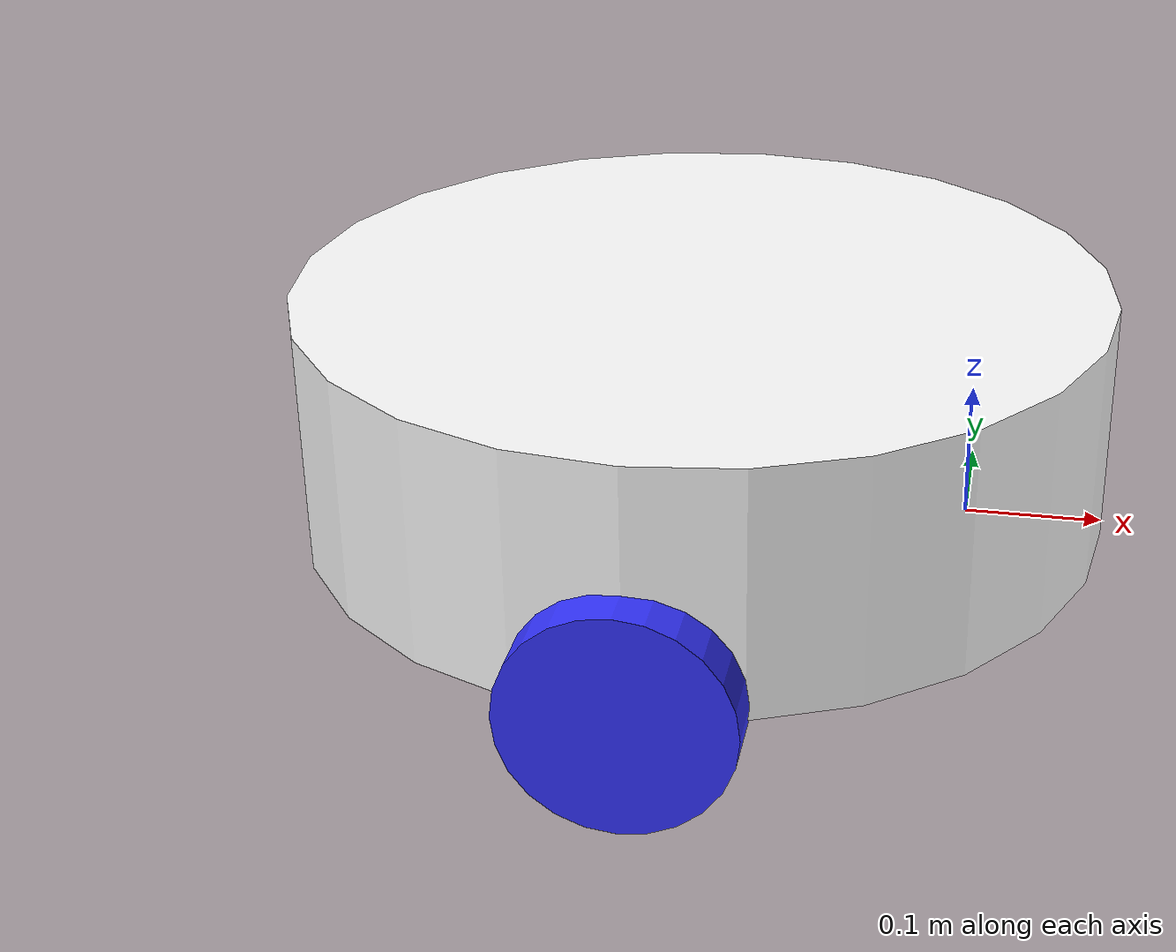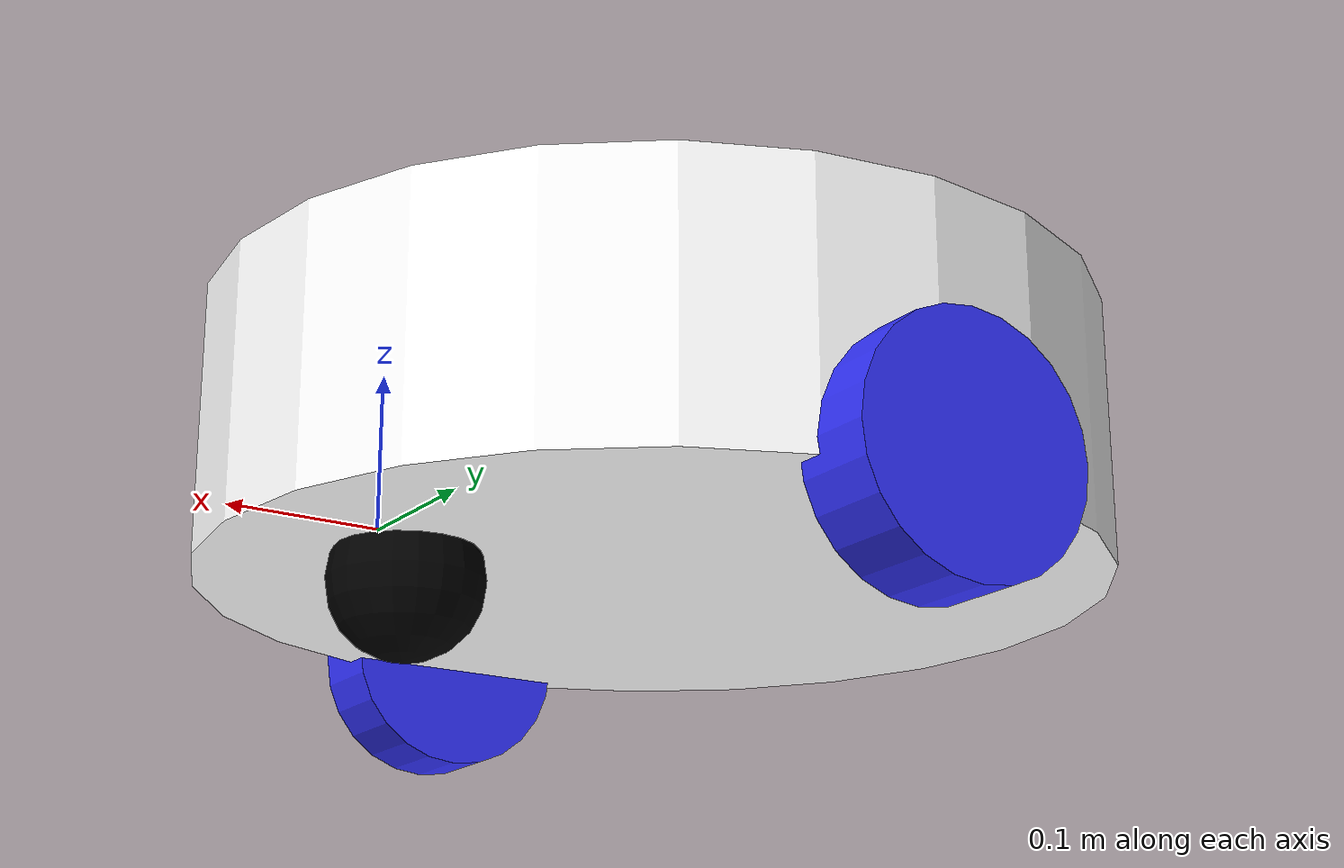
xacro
<?xml version="1.0"?>
<robot xmlns:xacro="http://www.ros.org/wiki/xacro" >

    <xacro:include filename="inertial_macros.xacro"/>

    <xacro:property name="chassis_length" value="0.18"/>
    <xacro:property name="chassis_radius" value="0.3"/>
    <xacro:property name="chassis_mass" value="1.0"/>
    <xacro:property name="wheel_radius" value="0.08"/>
    <xacro:property name="wheel_thickness" value="0.056"/>
    <xacro:property name="wheel_mass" value="0.05"/>
    <xacro:property name="wheel_offset_x" value="0.2"/>
    <xacro:property name="wheel_offset_y" value="0.17"/>
    <xacro:property name="wheel_offset_z" value="0.01"/>
    <xacro:property name="caster_wheel_radius" value="0.05"/>
    <xacro:property name="caster_wheel_mass" value="0.01"/>
    <xacro:property name="caster_wheel_offset_x" value="0.18"/>
    <xacro:property name="caster_wheel_offset_z" value="${wheel_offset_z - wheel_radius + caster_wheel_radius}"/>

    <material name="white">
        <color rgba="1 1 1 1" />
    </material>

    <material name="orange">
        <color rgba="1 0.3 0.1 1"/>
    </material>

    <material name="blue">
        <color rgba="0.2 0.2 1 1"/>
    </material>

    <material name="black">
        <color rgba="0 0 0 1"/>
    </material>

    <material name="red">
        <color rgba="1 0 0 1"/>
    </material>

    <!-- BASE LINK -->

    <link name="base_link">

    </link>

    <!-- BASE_FOOTPRINT LINK -->

    <joint name="base_footprint_joint" type="fixed">
        <parent link="base_link"/>
        <child link="base_footprint"/>
        <origin xyz="0 0 0" rpy="0 0 0"/>
    </joint>

    <link name="base_footprint">
    </link>

    <!-- CHASSIS LINK -->

    <joint name="chassis_joint" type="fixed">
        <parent link="base_link"/>
        <child link="chassis"/>
        <origin xyz="${-wheel_offset_x} 0 ${-wheel_offset_z}"/>
    </joint>

    <link name="chassis">
        <visual>
            <origin xyz="0 0 ${chassis_length/2}"/>
            <geometry>
                <cylinder length ="${chassis_length}" radius="${chassis_radius}" />
            </geometry>
            <material name="white"/>
        </visual>
        <collision>
            <origin xyz="0 0 ${chassis_length/2}"/>
            <geometry>
                <cylinder length ="${chassis_length}" radius="${chassis_radius}" />
            </geometry>
        </collision>
        <xacro:inertial_cylinder mass="0.5" length="${chassis_length}" radius="${chassis_radius}">
            <origin xyz="0 0 ${chassis_length/2}" rpy="0 0 0"/>
        </xacro:inertial_cylinder>
    </link>

    <gazebo reference="chassis">
        <material>Gazebo/Orange</material>
        <transparency>0</transparency>
    </gazebo>

    <!-- LEFT WHEEL LINK -->

    <joint name="left_wheel_joint" type="continuous">
        <parent link="base_link"/>
        <child link="left_wheel"/>
        <origin xyz="${-wheel_offset_x} ${chassis_radius} 0" rpy="${pi/2} 0 0" />
        <axis xyz="0 0 1"/>
    </joint>

    <link name="left_wheel">
        <visual>
            <geometry>
                <cylinder radius="${wheel_radius}" length="${wheel_thickness}"/>
            </geometry>
            <material name="blue"/>
        </visual>
        <collision>
            <geometry>
                <sphere radius="${wheel_radius}"/>
            </geometry>
        </collision>
        <xacro:inertial_cylinder mass="${wheel_mass}" length="${wheel_thickness}" radius="${wheel_radius}">
            <origin xyz="0 0 0" rpy="0 0 0"/>
        </xacro:inertial_cylinder>
    </link>

    <gazebo reference="left_wheel">
        <material>Gazebo/Blue</material>
    </gazebo>

    <!-- RIGHT WHEEL LINK -->

    <joint name="right_wheel_joint" type="continuous">
        <parent link="base_link"/>
        <child link="right_wheel"/>
        <origin xyz="${-wheel_offset_x} ${-chassis_radius} 0" rpy="${pi/2} 0 0" />
        <axis xyz="0 0 -1"/>
    </joint>

    <link name="right_wheel">
        <visual>
            <geometry>
                <cylinder radius="${wheel_radius}" length="${wheel_thickness}"/>
            </geometry>
            <material name="blue"/>
        </visual>
        <collision>
            <geometry>
                <sphere radius="${wheel_radius}"/>
            </geometry>
        </collision>
        <xacro:inertial_cylinder mass="${wheel_mass}" length="${wheel_thickness}" radius="${wheel_radius}">
            <origin xyz="0 0 0" rpy="0 0 0"/>
        </xacro:inertial_cylinder>
    </link>

    <gazebo reference="right_wheel">
        <material>Gazebo/Blue</material>
    </gazebo>

    <!-- CASTER WHEEL LINK -->

    <joint name="caster_wheel_joint" type="fixed">
        <parent link="chassis"/>
        <child link="caster_wheel"/>
        <origin xyz="${caster_wheel_offset_x} 0 ${caster_wheel_offset_z}"/>
    </joint>

    <link name="caster_wheel">
        <visual>
            <geometry>
                <sphere radius="${caster_wheel_radius}"/>
            </geometry>
            <material name="black"/>
        </visual>
        <collision>
            <geometry>
                <sphere radius="${caster_wheel_radius}"/>
            </geometry>
        </collision>
        <xacro:inertial_sphere mass="${caster_wheel_mass}" radius="${caster_wheel_radius}">
            <origin xyz="0 0 0" rpy="0 0 0"/>
        </xacro:inertial_sphere>
    </link>

    <gazebo reference="caster_wheel">
        <material>Gazebo/Black</material>
        <mu1 value="0.001"/>
        <mu2 value="0.001"/>
    </gazebo>

</robot>

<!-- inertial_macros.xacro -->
<robot xmlns:xacro="http://www.ros.org/wiki/xacro" >

    <!-- Specify some standard inertial calculations https://en.wikipedia.org/wiki/List_of_moments_of_inertia -->
    <!-- These make use of xacro's mathematical functionality -->

    <xacro:macro name="inertial_sphere" params="mass radius *origin">
        <inertial>
            <xacro:insert_block name="origin"/>
            <mass value="${mass}" />
            <inertia ixx="${(2.0/5.0) * mass * (radius*radius)}" ixy="0.0" ixz="0.0"
                    iyy="${(2.0/5.0) * mass * (radius*radius)}" iyz="0.0"
                    izz="${(2.0/5.0) * mass * (radius*radius)}" />
        </inertial>
    </xacro:macro>

 <xacro:macro name="inertial_box" params="mass x y z *origin">
        <inertial>
            <xacro:insert_block name="origin"/>
            <mass value="${mass}" />
            <inertia ixx="${(1.0/12.0) * mass * (y*y+z*z)}" ixy="0.0" ixz="0.0"
                    iyy="${(1.0/12.0) * mass * (x*x+z*z)}" iyz="0.0"
                    izz="${(1.0/12.0) * mass * (x*x+y*y)}" />
        </inertial>
    </xacro:macro>

   <xacro:macro name="inertial_cylinder" params="mass length radius *origin">
        <inertial>
            <xacro:insert_block name="origin"/>
            <mass value="${mass}" />
            <inertia ixx="${(1.0/12.0) * mass * (3.0*radius*radius + length*length)}" ixy="0.0" ixz="0.0"
                    iyy="${(1.0/12.0) * mass * (3.0*radius*radius + length*length)}" iyz="0.0"
                    izz="${(1.0/2.0) * mass * (radius*radius)}" />
        </inertial>
    </xacro:macro>

</robot>
